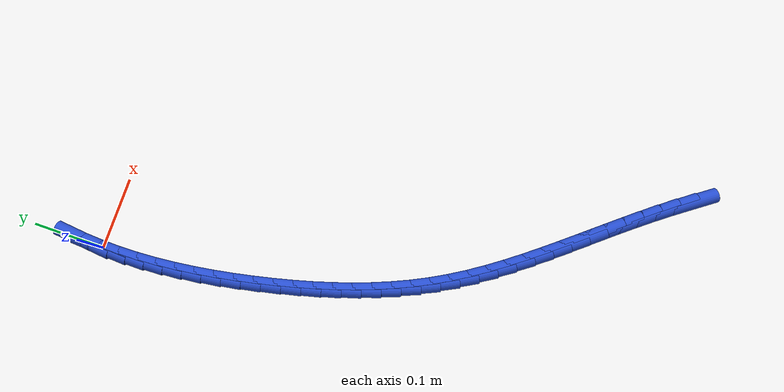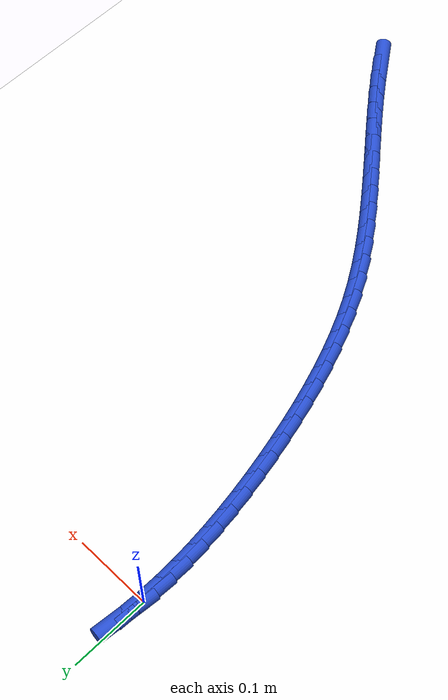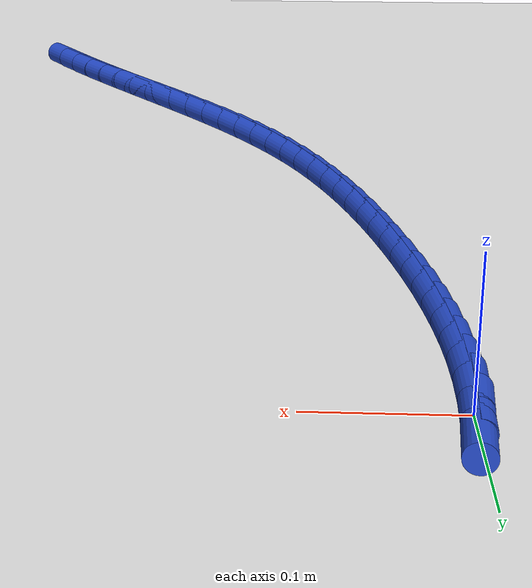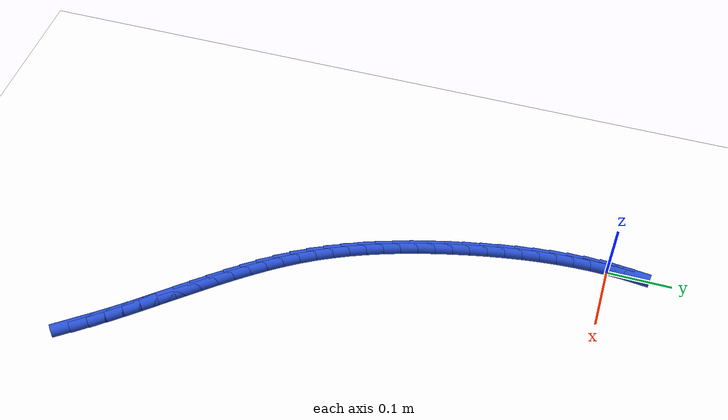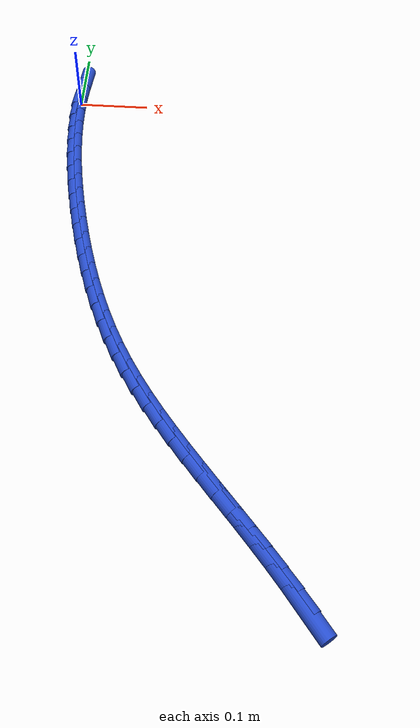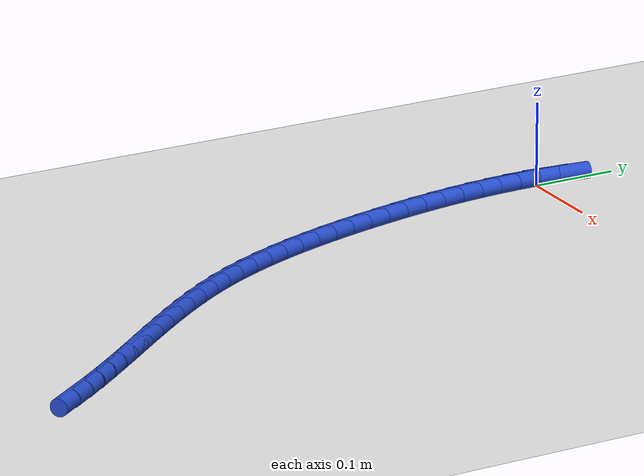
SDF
<sdf version="1.6">
 <world name="default">
  <model name="ground_plane">
   <static>1</static>
   <link name="link">
    <collision name="collision">
     <geometry><plane><normal>0 0 1</normal><size>100 100</size></plane></geometry>
     <surface><friction><ode><mu>100</mu><mu2>50</mu2></ode></friction></surface>
    </collision>
    <visual name="visual">
     <cast_shadows>0</cast_shadows>
     <geometry><plane><normal>0 0 1</normal><size>100 100</size></plane></geometry>
     <material>
      <script><uri>file://media/materials/scripts/gazebo.material</uri><name>Gazebo/WhiteGlow</name></script>
     </material>
    </visual>
   </link>
  </model>
  <model name="line">
   <link name="link_0">
    <pose>-2.6020852139652106e-18 -6.938893903907228e-18 0.01 0 1.57 1.518536319305877</pose>
    <collision name="collision">
     <geometry><cylinder><radius>0.01</radius><length>0.08</length></cylinder></geometry>
    </collision>
    <visual name="visual">
     <material>
      <script><name>Gazebo/Blue</name><uri>file://media/materials/scripts/gazebo.material</uri></script>
     </material>
     <geometry><cylinder><radius>0.01</radius><length>0.08</length></cylinder></geometry>
    </visual>
   </link>
   <link name="link_239">
    <pose>0.3213809530326003 -0.7327648269491527 0.01 0 1.57 -0.9408073575263926</pose>
    <collision name="collision">
     <geometry><cylinder><radius>0.01</radius><length>0.08</length></cylinder></geometry>
    </collision>
    <visual name="visual">
     <material>
      <script><name>Gazebo/Blue</name><uri>file://media/materials/scripts/gazebo.material</uri></script>
     </material>
     <geometry><cylinder><radius>0.01</radius><length>0.08</length></cylinder></geometry>
    </visual>
   </link>
   <link name="link_240">
    <pose>0.3055946680707715 -0.7111130208234081 0.01 0 1.57 -0.9169514262112242</pose>
    <collision name="collision">
     <geometry><cylinder><radius>0.01</radius><length>0.08</length></cylinder></geometry>
    </collision>
    <visual name="visual">
     <material>
      <script><name>Gazebo/Blue</name><uri>file://media/materials/scripts/gazebo.material</uri></script>
     </material>
     <geometry><cylinder><radius>0.01</radius><length>0.08</length></cylinder></geometry>
    </visual>
   </link>
   <link name="link_241">
    <pose>0.28931380074686763 -0.6898666442120494 0.01 0 1.57 -0.8985401940756649</pose>
    <collision name="collision">
     <geometry><cylinder><radius>0.01</radius><length>0.08</length></cylinder></geometry>
    </collision>
    <visual name="visual">
     <material>
      <script><name>Gazebo/Blue</name><uri>file://media/materials/scripts/gazebo.material</uri></script>
     </material>
     <geometry><cylinder><radius>0.01</radius><length>0.08</length></cylinder></geometry>
    </visual>
   </link>
   <link name="link_242">
    <pose>0.27266002056116706 -0.6689430483523938 0.01 0 1.57 -0.885582840986208</pose>
    <collision name="collision">
     <geometry><cylinder><radius>0.01</radius><length>0.08</length></cylinder></geometry>
    </collision>
    <visual name="visual">
     <material>
      <script><name>Gazebo/Blue</name><uri>file://media/materials/scripts/gazebo.material</uri></script>
     </material>
     <geometry><cylinder><radius>0.01</radius><length>0.08</length></cylinder></geometry>
    </visual>
   </link>
   <link name="link_243">
    <pose>0.2557549970139501 -0.6482595844817609 0.01 0 1.57 -0.8780852213422254</pose>
    <collision name="collision">
     <geometry><cylinder><radius>0.01</radius><length>0.08</length></cylinder></geometry>
    </collision>
    <visual name="visual">
     <material>
      <script><name>Gazebo/Blue</name><uri>file://media/materials/scripts/gazebo.material</uri></script>
     </material>
     <geometry><cylinder><radius>0.01</radius><length>0.08</length></cylinder></geometry>
    </visual>
   </link>
   <link name="link_244">
    <pose>0.23872039960549485 -0.6277336038374671 0.01 0 1.57 -0.8760615148576298</pose>
    <collision name="collision">
     <geometry><cylinder><radius>0.01</radius><length>0.08</length></cylinder></geometry>
    </collision>
    <visual name="visual">
     <material>
      <script><name>Gazebo/Blue</name><uri>file://media/materials/scripts/gazebo.material</uri></script>
     </material>
     <geometry><cylinder><radius>0.01</radius><length>0.08</length></cylinder></geometry>
    </visual>
   </link>
   <link name="link_245">
    <pose>0.22167789783608172 -0.6072824576568324 0.01 0 1.57 -0.8795411199913228</pose>
    <collision name="collision">
     <geometry><cylinder><radius>0.01</radius><length>0.08</length></cylinder></geometry>
    </collision>
    <visual name="visual">
     <material>
      <script><name>Gazebo/Blue</name><uri>file://media/materials/scripts/gazebo.material</uri></script>
     </material>
     <geometry><cylinder><radius>0.01</radius><length>0.08</length></cylinder></geometry>
    </visual>
   </link>
   <link name="link_246">
    <pose>0.20474916120598946 -0.5868234971771742 0.01 0 1.57 -0.888570783009818</pose>
    <collision name="collision">
     <geometry><cylinder><radius>0.01</radius><length>0.08</length></cylinder></geometry>
    </collision>
    <visual name="visual">
     <material>
      <script><name>Gazebo/Blue</name><uri>file://media/materials/scripts/gazebo.material</uri></script>
     </material>
     <geometry><cylinder><radius>0.01</radius><length>0.08</length></cylinder></geometry>
    </visual>
   </link>
   <link name="link_247">
    <pose>0.18805585921549678 -0.5662740736358101 0.01 0 1.57 -0.9032118102713257</pose>
    <collision name="collision">
     <geometry><cylinder><radius>0.01</radius><length>0.08</length></cylinder></geometry>
    </collision>
    <visual name="visual">
     <material>
      <script><name>Gazebo/Blue</name><uri>file://media/materials/scripts/gazebo.material</uri></script>
     </material>
     <geometry><cylinder><radius>0.01</radius><length>0.08</length></cylinder></geometry>
    </visual>
   </link>
   <link name="link_248">
    <pose>0.171719661364884 -0.5455515382700598 0.01 0 1.57 -0.9235320136065092</pose>
    <collision name="collision">
     <geometry><cylinder><radius>0.01</radius><length>0.08</length></cylinder></geometry>
    </collision>
    <visual name="visual">
     <material>
      <script><name>Gazebo/Blue</name><uri>file://media/materials/scripts/gazebo.material</uri></script>
     </material>
     <geometry><cylinder><radius>0.01</radius><length>0.08</length></cylinder></geometry>
    </visual>
   </link>
   <link name="link_249">
    <pose>0.15586223715442946 -0.5245732423172401 0.01 0 1.57 -0.9495919000033841</pose>
    <collision name="collision">
     <geometry><cylinder><radius>0.01</radius><length>0.08</length></cylinder></geometry>
    </collision>
    <visual name="visual">
     <material>
      <script><name>Gazebo/Blue</name><uri>file://media/materials/scripts/gazebo.material</uri></script>
     </material>
     <geometry><cylinder><radius>0.01</radius><length>0.08</length></cylinder></geometry>
    </visual>
   </link>
   <link name="link_250">
    <pose>0.14060525608441324 -0.5032565370146704 0.01 0 1.57 -0.9814246711367335</pose>
    <collision name="collision">
     <geometry><cylinder><radius>0.01</radius><length>0.08</length></cylinder></geometry>
    </collision>
    <visual name="visual">
     <material>
      <script><name>Gazebo/Blue</name><uri>file://media/materials/scripts/gazebo.material</uri></script>
     </material>
     <geometry><cylinder><radius>0.01</radius><length>0.08</length></cylinder></geometry>
    </visual>
   </link>
   <link name="link_251">
    <pose>0.12607038765511377 -0.48151877359966805 0.01 0 1.57 -1.0190100082864413</pose>
    <collision name="collision">
     <geometry><cylinder><radius>0.01</radius><length>0.08</length></cylinder></geometry>
    </collision>
    <visual name="visual">
     <material>
      <script><name>Gazebo/Blue</name><uri>file://media/materials/scripts/gazebo.material</uri></script>
     </material>
     <geometry><cylinder><radius>0.01</radius><length>0.08</length></cylinder></geometry>
    </visual>
   </link>
   <link name="link_252">
    <pose>0.1123793013668112 -0.4592773033095523 0.01 0 1.57 -1.0620208748392688</pose>
    <collision name="collision">
     <geometry><cylinder><radius>0.01</radius><length>0.08</length></cylinder></geometry>
    </collision>
    <visual name="visual">
     <material>
      <script><name>Gazebo/Blue</name><uri>file://media/materials/scripts/gazebo.material</uri></script>
     </material>
     <geometry><cylinder><radius>0.01</radius><length>0.08</length></cylinder></geometry>
    </visual>
   </link>
   <link name="link_253">
    <pose>0.0996489673512848 -0.4364529457203223 0.01 0 1.57 -1.105981203006138</pose>
    <collision name="collision">
     <geometry><cylinder><radius>0.01</radius><length>0.08</length></cylinder></geometry>
    </collision>
    <visual name="visual">
     <material>
      <script><name>Gazebo/Blue</name><uri>file://media/materials/scripts/gazebo.material</uri></script>
     </material>
     <geometry><cylinder><radius>0.01</radius><length>0.08</length></cylinder></geometry>
    </visual>
   </link>
   <link name="link_254">
    <pose>0.08790519665541653 -0.4130337997840196 0.01 0 1.57 -1.146906697726047</pose>
    <collision name="collision">
     <geometry><cylinder><radius>0.01</radius><length>0.08</length></cylinder></geometry>
    </collision>
    <visual name="visual">
     <material>
      <script><name>Gazebo/Blue</name><uri>file://media/materials/scripts/gazebo.material</uri></script>
     </material>
     <geometry><cylinder><radius>0.01</radius><length>0.08</length></cylinder></geometry>
    </visual>
   </link>
   <link name="link_255">
    <pose>0.07709115752430357 -0.38906895844076733 0.01 0 1.57 -1.184648191195906</pose>
    <collision name="collision">
     <geometry><cylinder><radius>0.01</radius><length>0.08</length></cylinder></geometry>
    </collision>
    <visual name="visual">
     <material>
      <script><name>Gazebo/Blue</name><uri>file://media/materials/scripts/gazebo.material</uri></script>
     </material>
     <geometry><cylinder><radius>0.01</radius><length>0.08</length></cylinder></geometry>
    </visual>
   </link>
   <link name="link_256">
    <pose>0.06714702722895227 -0.3646097220998741 0.01 0 1.57 -1.2192386355389497</pose>
    <collision name="collision">
     <geometry><cylinder><radius>0.01</radius><length>0.08</length></cylinder></geometry>
    </collision>
    <visual name="visual">
     <material>
      <script><name>Gazebo/Blue</name><uri>file://media/materials/scripts/gazebo.material</uri></script>
     </material>
     <geometry><cylinder><radius>0.01</radius><length>0.08</length></cylinder></geometry>
    </visual>
   </link>
   <link name="link_257">
    <pose>0.0580129830403682 -0.339707391170647 0.01 0 1.57 -1.2507401957079436</pose>
    <collision name="collision">
     <geometry><cylinder><radius>0.01</radius><length>0.08</length></cylinder></geometry>
    </collision>
    <visual name="visual">
     <material>
      <script><name>Gazebo/Blue</name><uri>file://media/materials/scripts/gazebo.material</uri></script>
     </material>
     <geometry><cylinder><radius>0.01</radius><length>0.08</length></cylinder></geometry>
    </visual>
   </link>
   <link name="link_258">
    <pose>0.04962920222955685 -0.31441326606239256 0.01 0 1.57 -1.2792337978321622</pose>
    <collision name="collision">
     <geometry><cylinder><radius>0.01</radius><length>0.08</length></cylinder></geometry>
    </collision>
    <visual name="visual">
     <material>
      <script><name>Gazebo/Blue</name><uri>file://media/materials/scripts/gazebo.material</uri></script>
     </material>
     <geometry><cylinder><radius>0.01</radius><length>0.08</length></cylinder></geometry>
    </visual>
   </link>
   <link name="link_259">
    <pose>0.04193586206752455 -0.28877864718442 0.01 0 1.57 -1.3048102871805967</pose>
    <collision name="collision">
     <geometry><cylinder><radius>0.01</radius><length>0.08</length></cylinder></geometry>
    </collision>
    <visual name="visual">
     <material>
      <script><name>Gazebo/Blue</name><uri>file://media/materials/scripts/gazebo.material</uri></script>
     </material>
     <geometry><cylinder><radius>0.01</radius><length>0.08</length></cylinder></geometry>
    </visual>
   </link>
   <link name="link_260">
    <pose>0.03487313982527662 -0.2628548349460352 0.01 0 1.57 -1.3275632005797997</pose>
    <collision name="collision">
     <geometry><cylinder><radius>0.01</radius><length>0.08</length></cylinder></geometry>
    </collision>
    <visual name="visual">
     <material>
      <script><name>Gazebo/Blue</name><uri>file://media/materials/scripts/gazebo.material</uri></script>
     </material>
     <geometry><cylinder><radius>0.01</radius><length>0.08</length></cylinder></geometry>
    </visual>
   </link>
   <link name="link_261">
    <pose>0.028381212773819286 -0.23669312975654713 0.01 0 1.57 -1.3479236599692992</pose>
    <collision name="collision">
     <geometry><cylinder><radius>0.01</radius><length>0.08</length></cylinder></geometry>
    </collision>
    <visual name="visual">
     <material>
      <script><name>Gazebo/Blue</name><uri>file://media/materials/scripts/gazebo.material</uri></script>
     </material>
     <geometry><cylinder><radius>0.01</radius><length>0.08</length></cylinder></geometry>
    </visual>
   </link>
   <link name="link_262">
    <pose>0.022409848737079567 -0.2103455078491387 0.01 0 1.57 -1.3687787277938048</pose>
    <collision name="collision">
     <geometry><cylinder><radius>0.01</radius><length>0.08</length></cylinder></geometry>
    </collision>
    <visual name="visual">
     <material>
      <script><name>Gazebo/Blue</name><uri>file://media/materials/scripts/gazebo.material</uri></script>
     </material>
     <geometry><cylinder><radius>0.01</radius><length>0.08</length></cylinder></geometry>
    </visual>
   </link>
   <link name="link_263">
    <pose>0.0169872548806265 -0.18386947289429756 0.01 0 1.57 -1.3916342784582818</pose>
    <collision name="collision">
     <geometry><cylinder><radius>0.01</radius><length>0.08</length></cylinder></geometry>
    </collision>
    <visual name="visual">
     <material>
      <script><name>Gazebo/Blue</name><uri>file://media/materials/scripts/gazebo.material</uri></script>
     </material>
     <geometry><cylinder><radius>0.01</radius><length>0.08</length></cylinder></geometry>
    </visual>
   </link>
   <link name="link_264">
    <pose>0.01217998748988669 -0.15732523093546527 0.01 0 1.57 -1.4166695892995658</pose>
    <collision name="collision">
     <geometry><cylinder><radius>0.01</radius><length>0.08</length></cylinder></geometry>
    </collision>
    <visual name="visual">
     <material>
      <script><name>Gazebo/Blue</name><uri>file://media/materials/scripts/gazebo.material</uri></script>
     </material>
     <geometry><cylinder><radius>0.01</radius><length>0.08</length></cylinder></geometry>
    </visual>
   </link>
   <link name="link_265">
    <pose>0.008054863726906315 -0.13077300639945272 0.01 0 1.57 -1.444076537230371</pose>
    <collision name="collision">
     <geometry><cylinder><radius>0.01</radius><length>0.08</length></cylinder></geometry>
    </collision>
    <visual name="visual">
     <material>
      <script><name>Gazebo/Blue</name><uri>file://media/materials/scripts/gazebo.material</uri></script>
     </material>
     <geometry><cylinder><radius>0.01</radius><length>0.08</length></cylinder></geometry>
    </visual>
   </link>
   <link name="link_266">
    <pose>0.0046787007537310325 -0.10427302371306765 0.01 0 1.57 -1.4740689632548938</pose>
    <collision name="collision">
     <geometry><cylinder><radius>0.01</radius><length>0.08</length></cylinder></geometry>
    </collision>
    <visual name="visual">
     <material>
      <script><name>Gazebo/Blue</name><uri>file://media/materials/scripts/gazebo.material</uri></script>
     </material>
     <geometry><cylinder><radius>0.01</radius><length>0.08</length></cylinder></geometry>
    </visual>
   </link>
   <link name="link_267">
    <pose>0.0021183157324069337 -0.07788550730312105 0.01 0 1.57 -1.5068819340228892</pose>
    <collision name="collision">
     <geometry><cylinder><radius>0.01</radius><length>0.08</length></cylinder></geometry>
    </collision>
    <visual name="visual">
     <material>
      <script><name>Gazebo/Blue</name><uri>file://media/materials/scripts/gazebo.material</uri></script>
     </material>
     <geometry><cylinder><radius>0.01</radius><length>0.08</length></cylinder></geometry>
    </visual>
   </link>
   <link name="link_268">
    <pose>0.00044052582497979475 -0.05167068159642149 0.01 0 1.57 -1.5427696384973997</pose>
    <collision name="collision">
     <geometry><cylinder><radius>0.01</radius><length>0.08</length></cylinder></geometry>
    </collision>
    <visual name="visual">
     <material>
      <script><name>Gazebo/Blue</name><uri>file://media/materials/scripts/gazebo.material</uri></script>
     </material>
     <geometry><cylinder><radius>0.01</radius><length>0.08</length></cylinder></geometry>
    </visual>
   </link>
   <link name="link_269">
    <pose>-0.00028785180650449556 -0.02568877101977756 0.01 0 1.57 1.5595914404406983</pose>
    <collision name="collision">
     <geometry><cylinder><radius>0.01</radius><length>0.08</length></cylinder></geometry>
    </collision>
    <visual name="visual">
     <material>
      <script><name>Gazebo/Blue</name><uri>file://media/materials/scripts/gazebo.material</uri></script>
     </material>
     <geometry><cylinder><radius>0.01</radius><length>0.08</length></cylinder></geometry>
    </visual>
   </link>
   <link name="link_270">
    <pose>-2.6020852139652106e-18 -1.734723475976807e-16 0.01 0 1.57 1.5167390620556598</pose>
    <collision name="collision">
     <geometry><cylinder><radius>0.01</radius><length>0.08</length></cylinder></geometry>
    </collision>
    <visual name="visual">
     <material>
      <script><name>Gazebo/Blue</name><uri>file://media/materials/scripts/gazebo.material</uri></script>
     </material>
     <geometry><cylinder><radius>0.01</radius><length>0.08</length></cylinder></geometry>
    </visual>
   </link>
   <link name="link_271">
    <pose>0.0013708984065391857 0.025335407036102854 0.01 0 1.57 1.4699923595676818</pose>
    <collision name="collision">
     <geometry><cylinder><radius>0.01</radius><length>0.08</length></cylinder></geometry>
    </collision>
    <visual name="visual">
     <material>
      <script><name>Gazebo/Blue</name><uri>file://media/materials/scripts/gazebo.material</uri></script>
     </material>
     <geometry><cylinder><radius>0.01</radius><length>0.08</length></cylinder></geometry>
    </visual>
   </link>
  </model>
 </world>
</sdf>
